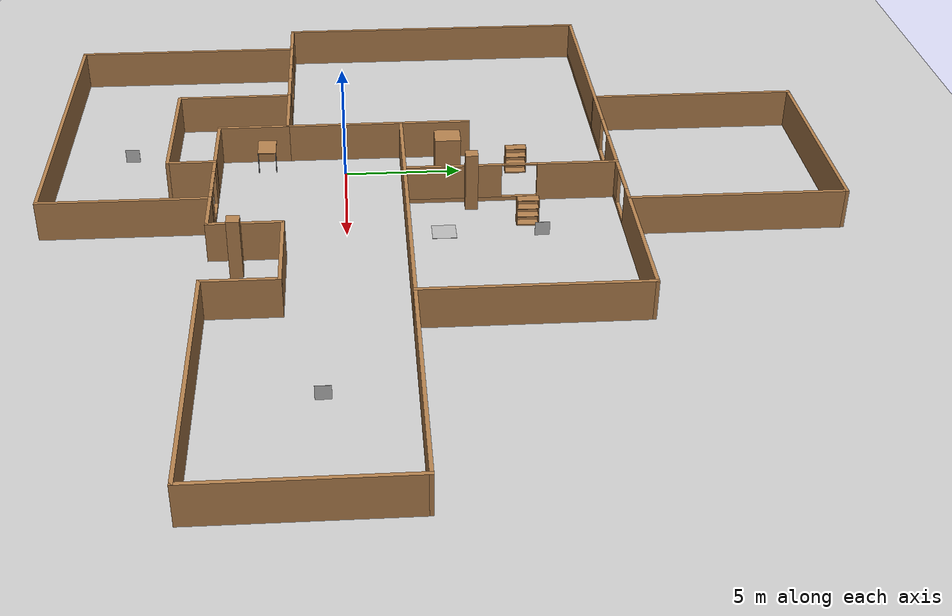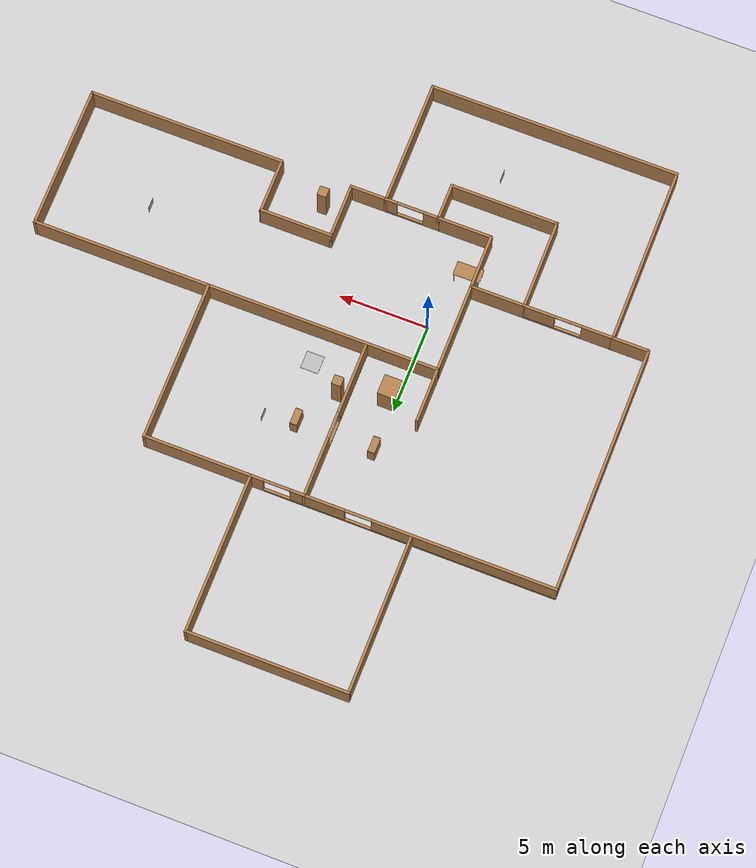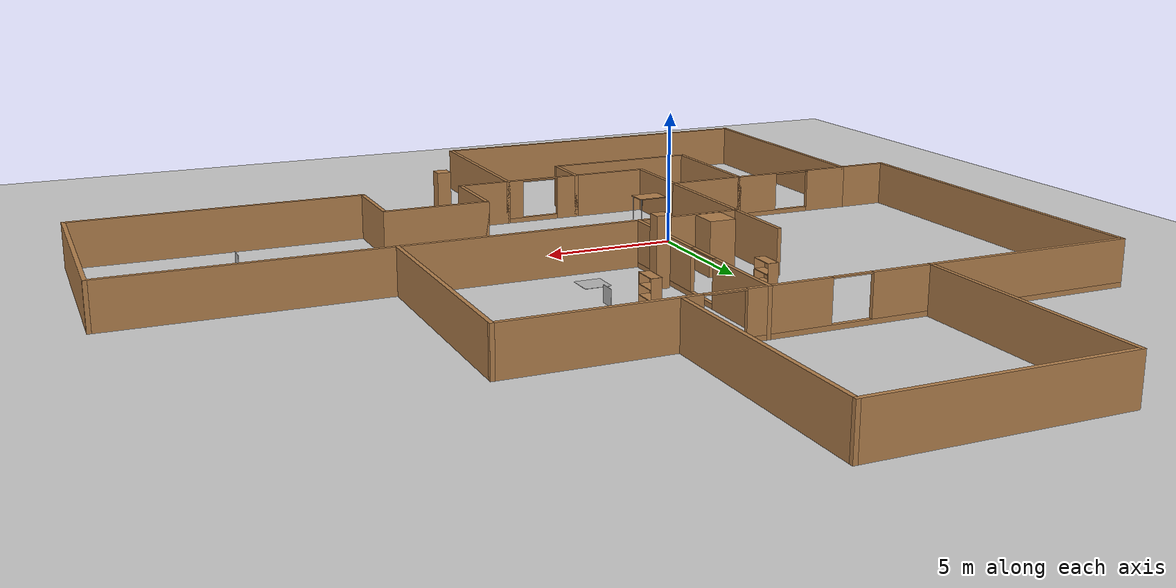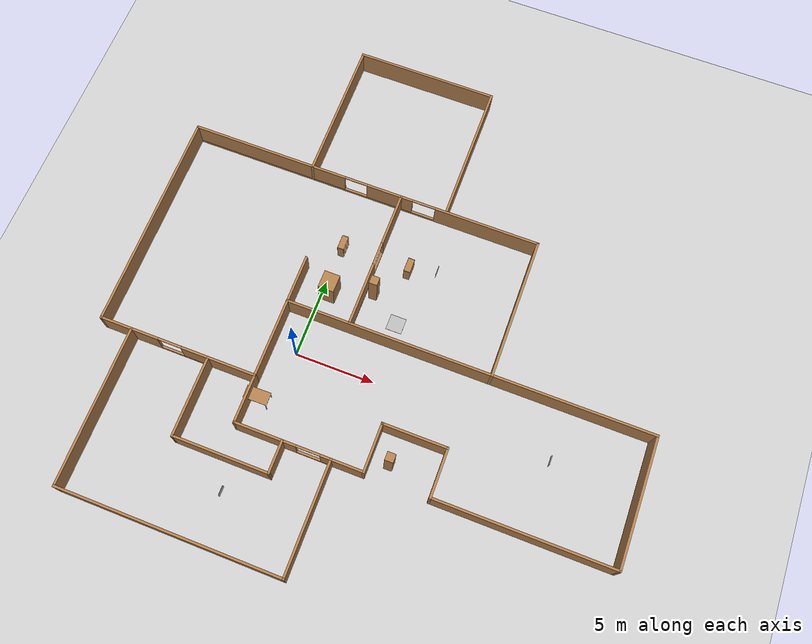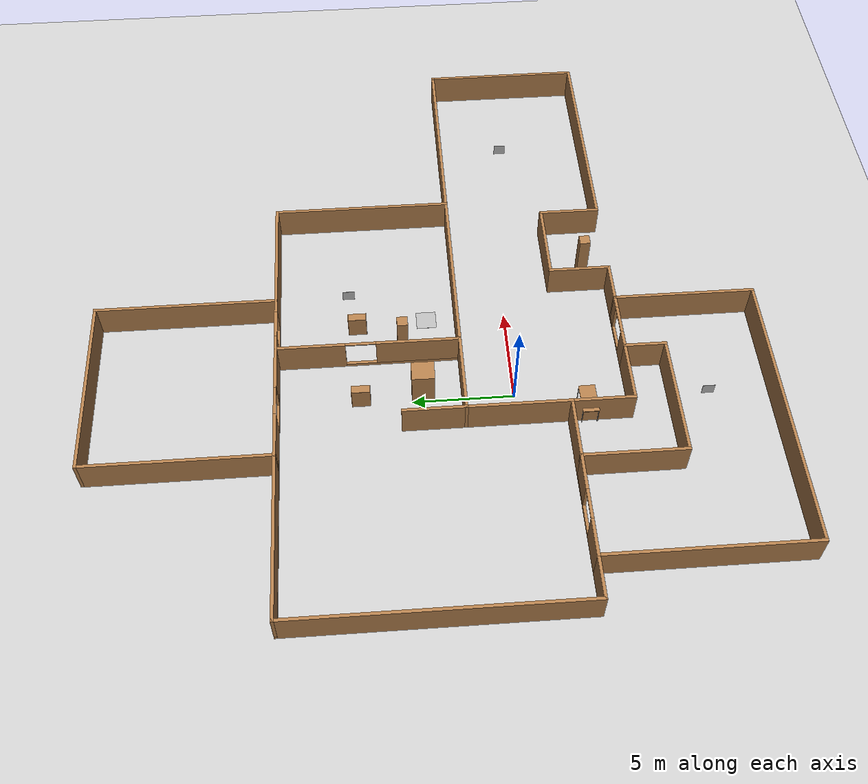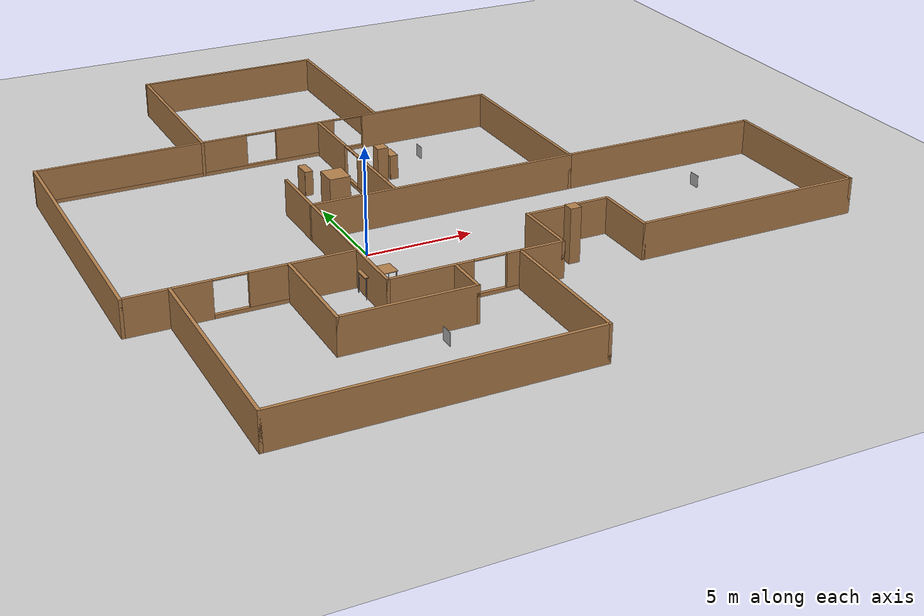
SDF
<sdf version="1.7">
 <world name="default">
  <model name="ground_plane">
   <static>1</static>
   <link name="link">
    <collision name="collision">
     <geometry><plane><normal>0 0 1</normal><size>25 25</size></plane></geometry>
     <surface><friction><ode><mu>100</mu><mu2>50</mu2></ode></friction></surface>
    </collision>
    <visual name="visual">
     <cast_shadows>0</cast_shadows>
     <geometry><plane><normal>0 0 1</normal><size>25 25</size></plane></geometry>
     <material>
      <script><uri>file://media/materials/scripts/gazebo.material</uri><name>Gazebo/Grey</name></script>
     </material>
    </visual>
   </link>
  </model>
  <model name="table">
   <static>0</static>
   <link name="link">
    <collision name="surface">
     <pose>0 0 1 0 -0 0</pose>
     <geometry><box><size>1.5 0.8 0.03</size></box></geometry>
     <surface><friction><ode><mu>0.6</mu><mu2>0.6</mu2></ode></friction></surface>
    </collision>
    <visual name="visual1">
     <pose>0 0 1 0 -0 0</pose>
     <geometry><box><size>1.5 0.8 0.03</size></box></geometry>
     <material>
      <script><uri>file://media/materials/scripts/gazebo.material</uri><name>Gazebo/Wood</name></script>
     </material>
    </visual>
    <collision name="front_left_leg">
     <pose>0.68 0.38 0.5 0 -0 0</pose>
     <geometry><cylinder><radius>0.02</radius><length>1</length></cylinder></geometry>
    </collision>
    <visual name="front_left_leg">
     <pose>0.68 0.38 0.5 0 -0 0</pose>
     <geometry><cylinder><radius>0.02</radius><length>1</length></cylinder></geometry>
     <material>
      <script><uri>file://media/materials/scripts/gazebo.material</uri><name>Gazebo/Grey</name></script>
     </material>
    </visual>
    <collision name="front_right_leg">
     <pose>0.68 -0.38 0.5 0 -0 0</pose>
     <geometry><cylinder><radius>0.02</radius><length>1</length></cylinder></geometry>
    </collision>
    <visual name="front_right_leg">
     <pose>0.68 -0.38 0.5 0 -0 0</pose>
     <geometry><cylinder><radius>0.02</radius><length>1</length></cylinder></geometry>
     <material>
      <script><uri>file://media/materials/scripts/gazebo.material</uri><name>Gazebo/Grey</name></script>
     </material>
    </visual>
    <collision name="back_right_leg">
     <pose>-0.68 -0.38 0.5 0 -0 0</pose>
     <geometry><cylinder><radius>0.02</radius><length>1</length></cylinder></geometry>
    </collision>
    <visual name="back_right_leg">
     <pose>-0.68 -0.38 0.5 0 -0 0</pose>
     <geometry><cylinder><radius>0.02</radius><length>1</length></cylinder></geometry>
     <material>
      <script><uri>file://media/materials/scripts/gazebo.material</uri><name>Gazebo/Grey</name></script>
     </material>
    </visual>
    <collision name="back_left_leg">
     <pose>-0.68 0.38 0.5 0 -0 0</pose>
     <geometry><cylinder><radius>0.02</radius><length>1</length></cylinder></geometry>
    </collision>
    <visual name="back_left_leg">
     <pose>-0.68 0.38 0.5 0 -0 0</pose>
     <geometry><cylinder><radius>0.02</radius><length>1</length></cylinder></geometry>
     <material>
      <script><uri>file://media/materials/scripts/gazebo.material</uri><name>Gazebo/Grey</name></script>
     </material>
    </visual>
    <inertial>
     <inertia><ixx>1</ixx><ixy>0</ixy><ixz>0</ixz><iyy>1</iyy><iyz>0</iyz><izz>1</izz></inertia>
     <mass>1</mass>
    </inertial>
   </link>
   <pose>-1.0198 -3.42426 -1.1e-05 1e-06 -0 0.013597</pose>
  </model>
  <model name="unit_box_0_clone_0">
   <pose>3.05307 5.27265 1.29125 -1e-06 -0 0.001589</pose>
   <link name="link">
    <inertial>
     <mass>1</mass>
     <inertia>
      <ixx>0.166667</ixx>
      <ixy>0</ixy>
      <ixz>0</ixz>
      <iyy>0.166667</iyy>
      <iyz>0</iyz>
      <izz>0.166667</izz>
     </inertia>
    </inertial>
    <collision name="collision"><geometry><box><size>0.52404 0.528614 2.5825</size></box></geometry></collision>
    <visual name="visual">
     <geometry><box><size>0.52404 0.528614 2.5825</size></box></geometry>
     <material>
      <script><uri>file://media/materials/scripts/gazebo.material</uri><name>Gazebo/Wood</name></script>
     </material>
    </visual>
   </link>
   <static>0</static>
  </model>
  <model name="unit_box_0_clone_3">
   <pose>7.64627 -4.34049 1.29125 -1e-06 -1e-06 0.001125</pose>
   <link name="link">
    <inertial>
     <mass>1</mass>
     <inertia>
      <ixx>0.166667</ixx>
      <ixy>0</ixy>
      <ixz>0</ixz>
      <iyy>0.166667</iyy>
      <iyz>0</iyz>
      <izz>0.166667</izz>
     </inertia>
    </inertial>
    <collision name="collision"><geometry><box><size>0.52404 0.528614 2.5825</size></box></geometry></collision>
    <visual name="visual">
     <geometry><box><size>0.52404 0.528614 2.5825</size></box></geometry>
     <material>
      <script><uri>file://media/materials/scripts/gazebo.material</uri><name>Gazebo/Wood</name></script>
     </material>
    </visual>
   </link>
   <static>0</static>
  </model>
  <model name="static_apriltag_0">
   <link name="link">
    <pose>0 0 0 0 1.57 0</pose>
    <inertial>
     <mass>0.39</mass>
     <inertia><ixx>0.00058</ixx><ixy>0</ixy><ixz>0</ixz><iyy>0.00058</iyy><iyz>0</iyz><izz>0.00019</izz></inertia>
    </inertial>
    <collision name="collision"><geometry><box><size>0.6 0.6 0.01</size></box></geometry></collision>
    <visual name="visual">
     <geometry><box><size>0.6 0.6 0.01</size></box></geometry>
     <material>
      <script>
       <uri>model://apriltag/materials/scripts</uri>
       <uri>model://apriltag/materials/textures</uri>
       <name>apriltag/Diffuse0</name>
      </script>
     </material>
    </visual>
    <gravity>0</gravity>
   </link>
   <pose>6.2472 7.88725 0.801689 3.1408 -0.000797 -3.14159</pose>
   <static>1</static>
   <pose>1.90787 0.108649 0 0 -0 0</pose>
  </model>
  <model name="static_apriltag_4">
   <link name="link">
    <pose>0 0 0 0 1.57 0</pose>
    <inertial>
     <mass>0.39</mass>
     <inertia><ixx>0.00058</ixx><ixy>0</ixy><ixz>0</ixz><iyy>0.00058</iyy><iyz>0</iyz><izz>0.00019</izz></inertia>
    </inertial>
    <collision name="collision"><geometry><box><size>0.6 0.6 0.01</size></box></geometry></collision>
    <visual name="visual">
     <geometry><box><size>0.6 0.6 0.01</size></box></geometry>
     <material>
      <script>
       <uri>model://apriltag/materials/scripts</uri>
       <uri>model://apriltag/materials/textures</uri>
       <name>apriltag/Diffuse4</name>
      </script>
     </material>
    </visual>
    <gravity>0</gravity>
   </link>
   <pose>16.249 -0.896929 0.8 -1.5708 -0.000796 3.14</pose>
   <static>1</static>
   <pose>3.93537 3.29316 0 0 -0 0</pose>
  </model>
  <model name="static_apriltag_5">
   <link name="link">
    <pose>0 0 0 -1.57 1.57 -0</pose>
    <inertial>
     <mass>0.39</mass>
     <inertia><ixx>0.00058</ixx><ixy>0</ixy><ixz>0</ixz><iyy>0.00058</iyy><iyz>0</iyz><izz>0.00019</izz></inertia>
    </inertial>
    <collision name="collision"><geometry><box><size>0.6 0.6 0.01</size></box></geometry></collision>
    <visual name="visual">
     <geometry><box><size>0.6 0.6 0.01</size></box></geometry>
     <material>
      <script>
       <uri>model://apriltag/materials/scripts</uri>
       <uri>model://apriltag/materials/textures</uri>
       <name>apriltag/Diffuse5</name>
      </script>
     </material>
    </visual>
    <gravity>0</gravity>
   </link>
   <pose>-0.753128 -9.28773 0.802459 3.14159 -0.001593 1.57159</pose>
   <static>1</static>
   <pose>5.04082 3.71574 0 0 -0 0</pose>
  </model>
  <model name="0810_MAP2_elment_1">
   <pose>5 4 -0.115 0 -0 0</pose>
   <link name="startflag">
    <pose>0 0 0.115 0 -0 0</pose>
    <inertial>
     <mass>0.39</mass>
     <inertia><ixx>0.00058</ixx><ixy>0</ixy><ixz>0</ixz><iyy>0.00058</iyy><iyz>0</iyz><izz>0.00019</izz></inertia>
    </inertial>
    <collision name="collision"><geometry><box><size>1 1 0.01</size></box></geometry></collision>
    <visual name="visual">
     <geometry><box><size>1 1 0.01</size></box></geometry>
     <material>
      <script>
       <uri>model://apriltag/materials/scripts</uri>
       <uri>model://apriltag/materials/textures</uri>
       <name>startflag/Diffuse</name>
      </script>
     </material>
    </visual>
   </link>
   <link name="Wall_0">
    <collision name="Wall_0_Collision">
     <geometry><box><size>13.15 0.15 1.8</size></box></geometry>
     <pose>0 0 0.9 0 -0 0</pose>
    </collision>
    <visual name="Wall_0_Visual">
     <pose>0 0 0.9 0 -0 0</pose>
     <geometry><box><size>13.15 0.15 1.8</size></box></geometry>
     <material>
      <script><uri>file://media/materials/scripts/gazebo.material</uri><name>Gazebo/Wood</name></script>
      <ambient>1 1 1 1</ambient>
     </material>
     <meta><layer>0</layer></meta>
    </visual>
    <pose>0 -1.5 0 0 -0 0</pose>
   </link>
   <link name="Wall_10">
    <collision name="Wall_10_Collision">
     <geometry><box><size>14.15 0.15 1.8</size></box></geometry>
     <pose>0 0 0.9 0 -0 0</pose>
    </collision>
    <visual name="Wall_10_Visual">
     <pose>0 0 0.9 0 -0 0</pose>
     <geometry><box><size>14.15 0.15 1.8</size></box></geometry>
     <material>
      <script><uri>file://media/materials/scripts/gazebo.material</uri><name>Gazebo/Wood</name></script>
      <ambient>1 1 1 1</ambient>
     </material>
     <meta><layer>0</layer></meta>
    </visual>
    <pose>-16.5 0.5 0 0 -0 -1.5708</pose>
   </link>
   <link name="Wall_14">
    <collision name="Wall_14_Collision">
     <geometry><box><size>5.15 0.15 1.8</size></box></geometry>
     <pose>0 0 0.9 0 -0 0</pose>
    </collision>
    <visual name="Wall_14_Visual">
     <pose>0 0 0.9 0 -0 0</pose>
     <geometry><box><size>5.15 0.15 1.8</size></box></geometry>
     <material>
      <script><uri>file://media/materials/scripts/gazebo.material</uri><name>Gazebo/Wood</name></script>
      <ambient>1 1 1 1</ambient>
     </material>
     <meta><layer>0</layer></meta>
    </visual>
    <pose>-6.5 -4 0 0 -0 -1.5708</pose>
   </link>
   <link name="Wall_16">
    <collision name="Wall_16_Collision">
     <geometry><box><size>10.15 0.15 1.8</size></box></geometry>
     <pose>0 0 0.9 0 -0 0</pose>
    </collision>
    <visual name="Wall_16_Visual">
     <pose>0 0 0.9 0 -0 0</pose>
     <geometry><box><size>10.15 0.15 1.8</size></box></geometry>
     <material>
      <script><uri>file://media/materials/scripts/gazebo.material</uri><name>Gazebo/Wood</name></script>
      <ambient>1 1 1 1</ambient>
     </material>
     <meta><layer>0</layer></meta>
    </visual>
    <pose>-14.5 -11.5 0 0 -0 -1.5708</pose>
   </link>
   <link name="Wall_18">
    <collision name="Wall_18_Collision">
     <geometry><box><size>3.15 0.15 1.8</size></box></geometry>
     <pose>0 0 0.9 0 -0 0</pose>
    </collision>
    <visual name="Wall_18_Visual">
     <pose>0 0 0.9 0 -0 0</pose>
     <geometry><box><size>3.15 0.15 1.8</size></box></geometry>
     <material>
      <script><uri>file://media/materials/scripts/gazebo.material</uri><name>Gazebo/Wood</name></script>
      <ambient>1 1 1 1</ambient>
     </material>
     <meta><layer>0</layer></meta>
    </visual>
    <pose>-6.5 -8 0 0 -0 -1.5708</pose>
   </link>
   <link name="Wall_2">
    <collision name="Wall_2_Collision">
     <geometry><box><size>9.15 0.15 1.8</size></box></geometry>
     <pose>0 0 0.9 0 -0 0</pose>
    </collision>
    <visual name="Wall_2_Visual">
     <pose>0 0 0.9 0 -0 0</pose>
     <geometry><box><size>9.15 0.15 1.8</size></box></geometry>
     <material>
      <script><uri>file://media/materials/scripts/gazebo.material</uri><name>Gazebo/Wood</name></script>
      <ambient>1 1 1 1</ambient>
     </material>
     <meta><layer>0</layer></meta>
    </visual>
    <pose>6.5 3 0 0 -0 1.5708</pose>
   </link>
   <link name="Wall_20">
    <collision name="Wall_20_Collision">
     <geometry><box><size>5.15 0.15 1.8</size></box></geometry>
     <pose>0 0 0.9 0 -0 0</pose>
    </collision>
    <visual name="Wall_20_Visual">
     <pose>0 0 0.9 0 -0 0</pose>
     <geometry><box><size>5.15 0.15 1.8</size></box></geometry>
     <material>
      <script><uri>file://media/materials/scripts/gazebo.material</uri><name>Gazebo/Wood</name></script>
      <ambient>1 1 1 1</ambient>
     </material>
     <meta><layer>0</layer></meta>
    </visual>
    <pose>-9.5 -9 0 0 -0 -1.5708</pose>
   </link>
   <link name="Wall_22">
    <collision name="Wall_22_Collision">
     <geometry><box><size>2.15 0.15 1.8</size></box></geometry>
     <pose>0 0 0.9 0 -0 0</pose>
    </collision>
    <visual name="Wall_22_Visual">
     <pose>0 0 0.9 0 -0 0</pose>
     <geometry><box><size>2.15 0.15 1.8</size></box></geometry>
     <material>
      <script><uri>file://media/materials/scripts/gazebo.material</uri><name>Gazebo/Wood</name></script>
      <ambient>1 1 1 1</ambient>
     </material>
     <meta><layer>0</layer></meta>
    </visual>
    <pose>-15.5 -6.5 0 0 -0 0</pose>
   </link>
   <link name="Wall_24">
    <collision name="Wall_24_Collision">
     <geometry><box><size>3.15 0.15 1.8</size></box></geometry>
     <pose>0 0 0.9 0 -0 0</pose>
    </collision>
    <visual name="Wall_24_Visual">
     <pose>0 0 0.9 0 -0 0</pose>
     <geometry><box><size>3.15 0.15 1.8</size></box></geometry>
     <material>
      <script><uri>file://media/materials/scripts/gazebo.material</uri><name>Gazebo/Wood</name></script>
      <ambient>1 1 1 1</ambient>
     </material>
     <meta><layer>0</layer></meta>
    </visual>
    <pose>-8 -6.5 0 0 -0 0</pose>
   </link>
   <link name="Wall_26">
    <collision name="Wall_26_Collision">
     <geometry><box><size>14.15 0.15 1.8</size></box></geometry>
     <pose>0 0 0.9 0 -0 0</pose>
    </collision>
    <visual name="Wall_26_Visual">
     <pose>0 0 0.9 0 -0 0</pose>
     <geometry><box><size>14.15 0.15 1.8</size></box></geometry>
     <material>
      <script><uri>file://media/materials/scripts/gazebo.material</uri><name>Gazebo/Wood</name></script>
      <ambient>1 1 1 1</ambient>
     </material>
     <meta><layer>0</layer></meta>
    </visual>
    <pose>-7.5 -16.5 0 0 -0 0</pose>
   </link>
   <link name="Wall_28">
    <collision name="Wall_28_Collision">
     <geometry><box><size>6.15 0.15 1.8</size></box></geometry>
     <pose>0 0 0.9 0 -0 0</pose>
    </collision>
    <visual name="Wall_28_Visual">
     <pose>0 0 0.9 0 -0 0</pose>
     <geometry><box><size>6.15 0.15 1.8</size></box></geometry>
     <material>
      <script><uri>file://media/materials/scripts/gazebo.material</uri><name>Gazebo/Wood</name></script>
      <ambient>1 1 1 1</ambient>
     </material>
     <meta><layer>0</layer></meta>
    </visual>
    <pose>-6.5 -11.5 0 0 -0 0</pose>
   </link>
   <link name="Wall_30">
    <collision name="Wall_30_Collision">
     <geometry><box><size>2.15 0.15 1.8</size></box></geometry>
     <pose>0 0 0.9 0 -0 0</pose>
    </collision>
    <visual name="Wall_30_Visual">
     <pose>0 0 0.9 0 -0 0</pose>
     <geometry><box><size>2.15 0.15 1.8</size></box></geometry>
     <material>
      <script><uri>file://media/materials/scripts/gazebo.material</uri><name>Gazebo/Wood</name></script>
      <ambient>1 1 1 1</ambient>
     </material>
     <meta><layer>0</layer></meta>
    </visual>
    <pose>-3.5 -10.5 0 0 -0 -1.5708</pose>
   </link>
   <link name="Wall_32">
    <collision name="Wall_32_Collision">
     <geometry><box><size>7.15 0.15 1.8</size></box></geometry>
     <pose>0 0 0.9 0 -0 0</pose>
    </collision>
    <visual name="Wall_32_Visual">
     <pose>0 0 0.9 0 -0 0</pose>
     <geometry><box><size>7.15 0.15 1.8</size></box></geometry>
     <material>
      <script><uri>file://media/materials/scripts/gazebo.material</uri><name>Gazebo/Wood</name></script>
      <ambient>1 1 1 1</ambient>
     </material>
     <meta><layer>0</layer></meta>
    </visual>
    <pose>-0.5 -13 0 0 -0 1.5708</pose>
   </link>
   <link name="Wall_36">
    <collision name="Wall_36_Collision">
     <geometry><box><size>3.15 0.15 1.8</size></box></geometry>
     <pose>0 0 0.9 0 -0 0</pose>
    </collision>
    <visual name="Wall_36_Visual">
     <pose>0 0 0.9 0 -0 0</pose>
     <geometry><box><size>3.15 0.15 1.8</size></box></geometry>
     <material>
      <script><uri>file://media/materials/scripts/gazebo.material</uri><name>Gazebo/Wood</name></script>
      <ambient>1 1 1 1</ambient>
     </material>
     <meta><layer>0</layer></meta>
    </visual>
    <pose>-5 -9.5 0 0 -0 0</pose>
   </link>
   <link name="Wall_37">
    <pose>-2 -9.5 0 0 -0 0</pose>
    <visual name="Wall_37_Visual_0">
     <pose>-1.11242 0 0.9 0 -0 0</pose>
     <geometry><box><size>0.925162 0.15 1.8</size></box></geometry>
     <material>
      <script><uri>file://media/materials/scripts/gazebo.material</uri><name>Gazebo/Wood</name></script>
      <ambient>1 1 1 1</ambient>
     </material>
     <meta><layer>0</layer></meta>
    </visual>
    <collision name="Wall_37_Collision_0">
     <geometry><box><size>0.925162 0.15 1.8</size></box></geometry>
     <pose>-1.11242 0 0.9 0 -0 0</pose>
    </collision>
    <visual name="Wall_37_Visual_1">
     <pose>0.462581 0 0.125 0 -0 0</pose>
     <geometry><box><size>2.22484 0.15 0.25</size></box></geometry>
     <material>
      <script><uri>file://media/materials/scripts/gazebo.material</uri><name>Gazebo/Wood</name></script>
      <ambient>1 1 1 1</ambient>
     </material>
     <meta><layer>0</layer></meta>
    </visual>
    <collision name="Wall_37_Collision_1">
     <geometry><box><size>2.22484 0.15 0.25</size></box></geometry>
     <pose>0.462581 0 0.125 0 -0 0</pose>
    </collision>
    <visual name="Wall_37_Visual_2">
     <pose>1.21258 0 1.025 0 -0 0</pose>
     <geometry><box><size>0.724838 0.15 1.55</size></box></geometry>
     <material>
      <script><uri>file://media/materials/scripts/gazebo.material</uri><name>Gazebo/Wood</name></script>
      <ambient>1 1 1 1</ambient>
     </material>
     <meta><layer>0</layer></meta>
    </visual>
    <collision name="Wall_37_Collision_2">
     <geometry><box><size>0.724838 0.15 1.55</size></box></geometry>
     <pose>1.21258 0 1.025 0 -0 0</pose>
    </collision>
    <visual name="Wall_37_Visual_3">
     <pose>0.100162 0 1.775 0 -0 0</pose>
     <geometry><box><size>1.5 0.15 0.05</size></box></geometry>
     <material>
      <script><uri>file://media/materials/scripts/gazebo.material</uri><name>Gazebo/Wood</name></script>
      <ambient>1 1 1 1</ambient>
     </material>
     <meta><layer>0</layer></meta>
    </visual>
    <collision name="Wall_37_Collision_3">
     <geometry><box><size>1.5 0.15 0.05</size></box></geometry>
     <pose>0.100162 0 1.775 0 -0 0</pose>
    </collision>
   </link>
   <link name="Wall_39">
    <pose>-12 -6.5 0 0 -0 0</pose>
    <visual name="Wall_39_Visual_0">
     <pose>-1.66475 0 0.9 0 -0 0</pose>
     <geometry><box><size>1.82051 0.15 1.8</size></box></geometry>
     <material>
      <script><uri>file://media/materials/scripts/gazebo.material</uri><name>Gazebo/Wood</name></script>
      <ambient>1 1 1 1</ambient>
     </material>
     <meta><layer>0</layer></meta>
    </visual>
    <collision name="Wall_39_Collision_0">
     <geometry><box><size>1.82051 0.15 1.8</size></box></geometry>
     <pose>-1.66475 0 0.9 0 -0 0</pose>
    </collision>
    <visual name="Wall_39_Visual_1">
     <pose>0.910253 0 0.125 0 -0 0</pose>
     <geometry><box><size>3.3295 0.15 0.25</size></box></geometry>
     <material>
      <script><uri>file://media/materials/scripts/gazebo.material</uri><name>Gazebo/Wood</name></script>
      <ambient>1 1 1 1</ambient>
     </material>
     <meta><layer>0</layer></meta>
    </visual>
    <collision name="Wall_39_Collision_1">
     <geometry><box><size>3.3295 0.15 0.25</size></box></geometry>
     <pose>0.910253 0 0.125 0 -0 0</pose>
    </collision>
    <visual name="Wall_39_Visual_2">
     <pose>1.66025 0 1.025 0 -0 0</pose>
     <geometry><box><size>1.8295 0.15 1.55</size></box></geometry>
     <material>
      <script><uri>file://media/materials/scripts/gazebo.material</uri><name>Gazebo/Wood</name></script>
      <ambient>1 1 1 1</ambient>
     </material>
     <meta><layer>0</layer></meta>
    </visual>
    <collision name="Wall_39_Collision_2">
     <geometry><box><size>1.8295 0.15 1.55</size></box></geometry>
     <pose>1.66025 0 1.025 0 -0 0</pose>
    </collision>
    <visual name="Wall_39_Visual_3">
     <pose>-0.004495 0 1.775 0 -0 0</pose>
     <geometry><box><size>1.5 0.15 0.05</size></box></geometry>
     <material>
      <script><uri>file://media/materials/scripts/gazebo.material</uri><name>Gazebo/Wood</name></script>
      <ambient>1 1 1 1</ambient>
     </material>
     <meta><layer>0</layer></meta>
    </visual>
    <collision name="Wall_39_Collision_3">
     <geometry><box><size>1.5 0.15 0.05</size></box></geometry>
     <pose>-0.004495 0 1.775 0 -0 0</pose>
    </collision>
   </link>
   <link name="Wall_4">
    <pose>-5 7.5 0 0 -0 3.14159</pose>
    <visual name="Wall_4_Visual_0">
     <pose>-8.17816 0 0.9 0 -0 0</pose>
     <geometry><box><size>6.79369 0.15 1.8</size></box></geometry>
     <material>
      <script><uri>file://media/materials/scripts/gazebo.material</uri><name>Gazebo/Wood</name></script>
      <ambient>1 1 1 1</ambient>
     </material>
     <meta><layer>0</layer></meta>
    </visual>
    <collision name="Wall_4_Collision_0">
     <geometry><box><size>6.79369 0.15 1.8</size></box></geometry>
     <pose>-8.17816 0 0.9 0 -0 0</pose>
    </collision>
    <visual name="Wall_4_Visual_1">
     <pose>3.39684 0 0.125 0 -0 0</pose>
     <geometry><box><size>16.3563 0.15 0.25</size></box></geometry>
     <material>
      <script><uri>file://media/materials/scripts/gazebo.material</uri><name>Gazebo/Wood</name></script>
      <ambient>1 1 1 1</ambient>
     </material>
     <meta><layer>0</layer></meta>
    </visual>
    <collision name="Wall_4_Collision_1">
     <geometry><box><size>16.3563 0.15 0.25</size></box></geometry>
     <pose>3.39684 0 0.125 0 -0 0</pose>
    </collision>
    <visual name="Wall_4_Visual_2">
     <pose>-1.75236 0 1.025 0 -0 0</pose>
     <geometry><box><size>3.0579 0.15 1.55</size></box></geometry>
     <material>
      <script><uri>file://media/materials/scripts/gazebo.material</uri><name>Gazebo/Wood</name></script>
      <ambient>1 1 1 1</ambient>
     </material>
     <meta><layer>0</layer></meta>
    </visual>
    <collision name="Wall_4_Collision_2">
     <geometry><box><size>3.0579 0.15 1.55</size></box></geometry>
     <pose>-1.75236 0 1.025 0 -0 0</pose>
    </collision>
    <visual name="Wall_4_Visual_3">
     <pose>6.4258 0 1.025 0 -0 0</pose>
     <geometry><box><size>10.2984 0.15 1.55</size></box></geometry>
     <material>
      <script><uri>file://media/materials/scripts/gazebo.material</uri><name>Gazebo/Wood</name></script>
      <ambient>1 1 1 1</ambient>
     </material>
     <meta><layer>0</layer></meta>
    </visual>
    <collision name="Wall_4_Collision_3">
     <geometry><box><size>10.2984 0.15 1.55</size></box></geometry>
     <pose>6.4258 0 1.025 0 -0 0</pose>
    </collision>
    <visual name="Wall_4_Visual_4">
     <pose>-4.03131 0 1.775 0 -0 0</pose>
     <geometry><box><size>1.5 0.15 0.05</size></box></geometry>
     <material>
      <script><uri>file://media/materials/scripts/gazebo.material</uri><name>Gazebo/Wood</name></script>
      <ambient>1 1 1 1</ambient>
     </material>
     <meta><layer>0</layer></meta>
    </visual>
    <collision name="Wall_4_Collision_4">
     <geometry><box><size>1.5 0.15 0.05</size></box></geometry>
     <pose>-4.03131 0 1.775 0 -0 0</pose>
    </collision>
    <visual name="Wall_4_Visual_5">
     <pose>0.526593 0 1.775 0 -0 0</pose>
     <geometry><box><size>1.5 0.15 0.05</size></box></geometry>
     <material>
      <script><uri>file://media/materials/scripts/gazebo.material</uri><name>Gazebo/Wood</name></script>
      <ambient>1 1 1 1</ambient>
     </material>
     <meta><layer>0</layer></meta>
    </visual>
    <collision name="Wall_4_Collision_5">
     <geometry><box><size>1.5 0.15 0.05</size></box></geometry>
     <pose>0.526593 0 1.775 0 -0 0</pose>
    </collision>
   </link>
   <link name="Wall_41">
    <collision name="Wall_41_Collision">
     <geometry><box><size>3.15 0.15 1.8</size></box></geometry>
     <pose>0 0 0.9 0 -0 0</pose>
    </collision>
    <visual name="Wall_41_Visual">
     <pose>0 0 0.9 0 -0 0</pose>
     <geometry><box><size>3.15 0.15 1.8</size></box></geometry>
     <material>
      <script><uri>file://media/materials/scripts/gazebo.material</uri><name>Gazebo/Wood</name></script>
      <ambient>1 1 1 1</ambient>
     </material>
     <meta><layer>0</layer></meta>
    </visual>
    <pose>-6.5 0 0 0 -0 1.5708</pose>
   </link>
   <link name="Wall_43">
    <collision name="Wall_43_Collision">
     <geometry><box><size>2.15 0.15 1.8</size></box></geometry>
     <pose>0 0 0.9 0 -0 0</pose>
    </collision>
    <visual name="Wall_43_Visual">
     <pose>0 0 0.9 0 -0 0</pose>
     <geometry><box><size>2.15 0.15 1.8</size></box></geometry>
     <material>
      <script><uri>file://media/materials/scripts/gazebo.material</uri><name>Gazebo/Wood</name></script>
      <ambient>1 1 1 1</ambient>
     </material>
     <meta><layer>0</layer></meta>
    </visual>
    <pose>0.5 -9.5 0 0 -0 0</pose>
   </link>
   <link name="Wall_44">
    <collision name="Wall_44_Collision">
     <geometry><box><size>3.15 0.15 1.8</size></box></geometry>
     <pose>0 0 0.9 0 -0 0</pose>
    </collision>
    <visual name="Wall_44_Visual">
     <pose>0 0 0.9 0 -0 0</pose>
     <geometry><box><size>3.15 0.15 1.8</size></box></geometry>
     <material>
      <script><uri>file://media/materials/scripts/gazebo.material</uri><name>Gazebo/Wood</name></script>
      <ambient>1 1 1 1</ambient>
     </material>
     <meta><layer>0</layer></meta>
    </visual>
    <pose>1.5 -8 0 0 -0 1.5708</pose>
   </link>
   <link name="Wall_45">
    <collision name="Wall_45_Collision">
     <geometry><box><size>4.15 0.15 1.8</size></box></geometry>
     <pose>0 0 0.9 0 -0 0</pose>
    </collision>
    <visual name="Wall_45_Visual">
     <pose>0 0 0.9 0 -0 0</pose>
     <geometry><box><size>4.15 0.15 1.8</size></box></geometry>
     <material>
      <script><uri>file://media/materials/scripts/gazebo.material</uri><name>Gazebo/Wood</name></script>
      <ambient>1 1 1 1</ambient>
     </material>
     <meta><layer>0</layer></meta>
    </visual>
    <pose>3.5 -6.5 0 0 -0 0</pose>
   </link>
   <link name="Wall_46">
    <collision name="Wall_46_Collision">
     <geometry><box><size>3.15 0.15 1.8</size></box></geometry>
     <pose>0 0 0.9 0 -0 0</pose>
    </collision>
    <visual name="Wall_46_Visual">
     <pose>0 0 0.9 0 -0 0</pose>
     <geometry><box><size>3.15 0.15 1.8</size></box></geometry>
     <material>
      <script><uri>file://media/materials/scripts/gazebo.material</uri><name>Gazebo/Wood</name></script>
      <ambient>1 1 1 1</ambient>
     </material>
     <meta><layer>0</layer></meta>
    </visual>
    <pose>5.5 -8 0 0 -0 -1.5708</pose>
   </link>
   <link name="Wall_47">
    <collision name="Wall_47_Collision">
     <geometry><box><size>11.15 0.15 1.8</size></box></geometry>
     <pose>0 0 0.9 0 -0 0</pose>
    </collision>
    <visual name="Wall_47_Visual">
     <pose>0 0 0.9 0 -0 0</pose>
     <geometry><box><size>11.15 0.15 1.8</size></box></geometry>
     <material>
      <script><uri>file://media/materials/scripts/gazebo.material</uri><name>Gazebo/Wood</name></script>
      <ambient>1 1 1 1</ambient>
     </material>
     <meta><layer>0</layer></meta>
    </visual>
    <pose>11 -9.5 0 0 -0 0</pose>
   </link>
   <link name="Wall_48">
    <collision name="Wall_48_Collision">
     <geometry><box><size>8.15 0.15 1.8</size></box></geometry>
     <pose>0 0 0.9 0 -0 0</pose>
    </collision>
    <visual name="Wall_48_Visual">
     <pose>0 0 0.9 0 -0 0</pose>
     <geometry><box><size>8.15 0.15 1.8</size></box></geometry>
     <material>
      <script><uri>file://media/materials/scripts/gazebo.material</uri><name>Gazebo/Wood</name></script>
      <ambient>1 1 1 1</ambient>
     </material>
     <meta><layer>0</layer></meta>
    </visual>
    <pose>16.5 -5.5 0 0 -0 1.5708</pose>
   </link>
   <link name="Wall_49">
    <collision name="Wall_49_Collision">
     <geometry><box><size>10.15 0.15 1.8</size></box></geometry>
     <pose>0 0 0.9 0 -0 0</pose>
    </collision>
    <visual name="Wall_49_Visual">
     <pose>0 0 0.9 0 -0 0</pose>
     <geometry><box><size>10.15 0.15 1.8</size></box></geometry>
     <material>
      <script><uri>file://media/materials/scripts/gazebo.material</uri><name>Gazebo/Wood</name></script>
      <ambient>1 1 1 1</ambient>
     </material>
     <meta><layer>0</layer></meta>
    </visual>
    <pose>11.5 -1.5 0 0 -0 3.14159</pose>
   </link>
   <link name="Wall_54">
    <collision name="Wall_54_Collision">
     <geometry><box><size>9.15 0.15 1.8</size></box></geometry>
     <pose>0 0 0.9 0 -0 0</pose>
    </collision>
    <visual name="Wall_54_Visual">
     <pose>0 0 0.9 0 -0 0</pose>
     <geometry><box><size>9.15 0.15 1.8</size></box></geometry>
     <material>
      <script><uri>file://media/materials/scripts/gazebo.material</uri><name>Gazebo/Wood</name></script>
      <ambient>1 1 1 1</ambient>
     </material>
     <meta><layer>0</layer></meta>
    </visual>
    <pose>-4 16.5 0 0 -0 3.14159</pose>
   </link>
   <link name="Wall_57">
    <collision name="Wall_57_Collision">
     <geometry><box><size>9.15 0.15 1.8</size></box></geometry>
     <pose>0 0 0.9 0 -0 0</pose>
    </collision>
    <visual name="Wall_57_Visual">
     <pose>0 0 0.9 0 -0 0</pose>
     <geometry><box><size>9.15 0.15 1.8</size></box></geometry>
     <material>
      <script><uri>file://media/materials/scripts/gazebo.material</uri><name>Gazebo/Wood</name></script>
      <ambient>1 1 1 1</ambient>
     </material>
     <meta><layer>0</layer></meta>
    </visual>
    <pose>-8.5 12 0 0 -0 -1.5708</pose>
   </link>
   <link name="Wall_6">
    <pose>-2.5 3 0 0 -0 -1.5708</pose>
    <visual name="Wall_6_Visual_0">
     <pose>-2.84145 0 0.9 0 -0 0</pose>
     <geometry><box><size>3.46711 0.15 1.8</size></box></geometry>
     <material>
      <script><uri>file://media/materials/scripts/gazebo.material</uri><name>Gazebo/Wood</name></script>
      <ambient>1 1 1 1</ambient>
     </material>
     <meta><layer>0</layer></meta>
    </visual>
    <collision name="Wall_6_Collision_0">
     <geometry><box><size>3.46711 0.15 1.8</size></box></geometry>
     <pose>-2.84145 0 0.9 0 -0 0</pose>
    </collision>
    <visual name="Wall_6_Visual_1">
     <pose>1.73355 0 0.125 0 -0 0</pose>
     <geometry><box><size>5.68289 0.15 0.25</size></box></geometry>
     <material>
      <script><uri>file://media/materials/scripts/gazebo.material</uri><name>Gazebo/Wood</name></script>
      <ambient>1 1 1 1</ambient>
     </material>
     <meta><layer>0</layer></meta>
    </visual>
    <collision name="Wall_6_Collision_1">
     <geometry><box><size>5.68289 0.15 0.25</size></box></geometry>
     <pose>1.73355 0 0.125 0 -0 0</pose>
    </collision>
    <visual name="Wall_6_Visual_2">
     <pose>2.48355 0 1.025 0 -0 0</pose>
     <geometry><box><size>4.18289 0.15 1.55</size></box></geometry>
     <material>
      <script><uri>file://media/materials/scripts/gazebo.material</uri><name>Gazebo/Wood</name></script>
      <ambient>1 1 1 1</ambient>
     </material>
     <meta><layer>0</layer></meta>
    </visual>
    <collision name="Wall_6_Collision_2">
     <geometry><box><size>4.18289 0.15 1.55</size></box></geometry>
     <pose>2.48355 0 1.025 0 -0 0</pose>
    </collision>
    <visual name="Wall_6_Visual_3">
     <pose>-0.357894 0 1.775 0 -0 0</pose>
     <geometry><box><size>1.5 0.15 0.05</size></box></geometry>
     <material>
      <script><uri>file://media/materials/scripts/gazebo.material</uri><name>Gazebo/Wood</name></script>
      <ambient>1 1 1 1</ambient>
     </material>
     <meta><layer>0</layer></meta>
    </visual>
    <collision name="Wall_6_Collision_3">
     <geometry><box><size>1.5 0.15 0.05</size></box></geometry>
     <pose>-0.357894 0 1.775 0 -0 0</pose>
    </collision>
   </link>
   <link name="Wall_8">
    <collision name="Wall_8_Collision">
     <geometry><box><size>9.15 0.15 1.8</size></box></geometry>
     <pose>0 0 0.9 0 -0 0</pose>
    </collision>
    <visual name="Wall_8_Visual">
     <pose>0 0 0.9 0 -0 0</pose>
     <geometry><box><size>9.15 0.15 1.8</size></box></geometry>
     <material>
      <script><uri>file://media/materials/scripts/gazebo.material</uri><name>Gazebo/Wood</name></script>
      <ambient>1 1 1 1</ambient>
     </material>
     <meta><layer>0</layer></meta>
    </visual>
    <pose>0.5 12 0 0 -0 1.5708</pose>
   </link>
   <static>1</static>
  </model>
  <model name="unit_box_clone_0">
   <pose>0.44333 4.43835 1.01795 1e-06 -1e-06 -0.009742</pose>
   <link name="link">
    <inertial>
     <mass>1</mass>
     <inertia>
      <ixx>0.166667</ixx>
      <ixy>0</ixy>
      <ixz>0</ixz>
      <iyy>0.166667</iyy>
      <iyz>0</iyz>
      <izz>0.166667</izz>
     </inertia>
    </inertial>
    <collision name="collision"><geometry><box><size>1 1.11313 2.03591</size></box></geometry></collision>
    <visual name="visual">
     <geometry><box><size>1 1.11313 2.03591</size></box></geometry>
     <material>
      <script><uri>file://media/materials/scripts/gazebo.material</uri><name>Gazebo/Wood</name></script>
     </material>
    </visual>
   </link>
   <static>0</static>
  </model>
  <model name="bookshelf_clone_0_clone_clone_clone_clone_0">
   <static>1</static>
   <link name="link">
    <inertial><mass>1</mass></inertial>
    <collision name="back">
     <pose>0 0.005 0.6 0 -0 0</pose>
     <geometry><box><size>0.9 0.01 1.2</size></box></geometry>
    </collision>
    <visual name="visual1">
     <pose>0 0.005 0.6 0 -0 0</pose>
     <geometry><box><size>0.9 0.01 1.2</size></box></geometry>
     <material>
      <script><uri>file://media/materials/scripts/gazebo.material</uri><name>Gazebo/Wood</name></script>
     </material>
    </visual>
    <collision name="left_side">
     <pose>0.45 -0.195 0.6 0 -0 0</pose>
     <geometry><box><size>0.02 0.4 1.2</size></box></geometry>
    </collision>
    <visual name="visual2">
     <pose>0.45 -0.195 0.6 0 -0 0</pose>
     <geometry><box><size>0.02 0.4 1.2</size></box></geometry>
     <material>
      <script><uri>file://media/materials/scripts/gazebo.material</uri><name>Gazebo/Wood</name></script>
     </material>
    </visual>
    <collision name="right_side">
     <pose>-0.45 -0.195 0.6 0 -0 0</pose>
     <geometry><box><size>0.02 0.4 1.2</size></box></geometry>
    </collision>
    <visual name="visual3">
     <pose>-0.45 -0.195 0.6 0 -0 0</pose>
     <geometry><box><size>0.02 0.4 1.2</size></box></geometry>
     <material>
      <script><uri>file://media/materials/scripts/gazebo.material</uri><name>Gazebo/Wood</name></script>
     </material>
    </visual>
    <collision name="bottom">
     <pose>0 -0.195 0.03 0 -0 0</pose>
     <geometry><box><size>0.88 0.4 0.06</size></box></geometry>
    </collision>
    <visual name="visual4">
     <pose>0 -0.195 0.03 0 -0 0</pose>
     <geometry><box><size>0.88 0.4 0.06</size></box></geometry>
     <material>
      <script><uri>file://media/materials/scripts/gazebo.material</uri><name>Gazebo/Wood</name></script>
     </material>
    </visual>
    <collision name="top">
     <pose>0 -0.195 1.19 0 -0 0</pose>
     <geometry><box><size>0.88 0.4 0.02</size></box></geometry>
    </collision>
    <visual name="visual5">
     <pose>0 -0.195 1.19 0 -0 0</pose>
     <geometry><box><size>0.88 0.4 0.02</size></box></geometry>
     <material>
      <script><uri>file://media/materials/scripts/gazebo.material</uri><name>Gazebo/Wood</name></script>
     </material>
    </visual>
    <collision name="low_shelf">
     <pose>0 -0.195 0.43 0 -0 0</pose>
     <geometry><box><size>0.88 0.4 0.02</size></box></geometry>
    </collision>
    <visual name="visual6">
     <pose>0 -0.195 0.43 0 -0 0</pose>
     <geometry><box><size>0.88 0.4 0.02</size></box></geometry>
     <material>
      <script><uri>file://media/materials/scripts/gazebo.material</uri><name>Gazebo/Wood</name></script>
     </material>
    </visual>
    <collision name="high_shelf">
     <pose>0 -0.195 0.8 0 -0 0</pose>
     <geometry><box><size>0.88 0.4 0.02</size></box></geometry>
    </collision>
    <visual name="visual7">
     <pose>0 -0.195 0.8 0 -0 0</pose>
     <geometry><box><size>0.88 0.4 0.02</size></box></geometry>
     <material>
      <script><uri>file://media/materials/scripts/gazebo.material</uri><name>Gazebo/Wood</name></script>
     </material>
    </visual>
   </link>
   <pose>-0.040988 7.46061 0 0 -0 1.57</pose>
  </model>
  <model name="bookshelf_clone_0_clone_clone_clone_clone_1">
   <static>1</static>
   <link name="link">
    <inertial><mass>1</mass></inertial>
    <collision name="back">
     <pose>0 0.005 0.6 0 -0 0</pose>
     <geometry><box><size>0.9 0.01 1.2</size></box></geometry>
    </collision>
    <visual name="visual1">
     <pose>0 0.005 0.6 0 -0 0</pose>
     <geometry><box><size>0.9 0.01 1.2</size></box></geometry>
     <material>
      <script><uri>file://media/materials/scripts/gazebo.material</uri><name>Gazebo/Wood</name></script>
     </material>
    </visual>
    <collision name="left_side">
     <pose>0.45 -0.195 0.6 0 -0 0</pose>
     <geometry><box><size>0.02 0.4 1.2</size></box></geometry>
    </collision>
    <visual name="visual2">
     <pose>0.45 -0.195 0.6 0 -0 0</pose>
     <geometry><box><size>0.02 0.4 1.2</size></box></geometry>
     <material>
      <script><uri>file://media/materials/scripts/gazebo.material</uri><name>Gazebo/Wood</name></script>
     </material>
    </visual>
    <collision name="right_side">
     <pose>-0.45 -0.195 0.6 0 -0 0</pose>
     <geometry><box><size>0.02 0.4 1.2</size></box></geometry>
    </collision>
    <visual name="visual3">
     <pose>-0.45 -0.195 0.6 0 -0 0</pose>
     <geometry><box><size>0.02 0.4 1.2</size></box></geometry>
     <material>
      <script><uri>file://media/materials/scripts/gazebo.material</uri><name>Gazebo/Wood</name></script>
     </material>
    </visual>
    <collision name="bottom">
     <pose>0 -0.195 0.03 0 -0 0</pose>
     <geometry><box><size>0.88 0.4 0.06</size></box></geometry>
    </collision>
    <visual name="visual4">
     <pose>0 -0.195 0.03 0 -0 0</pose>
     <geometry><box><size>0.88 0.4 0.06</size></box></geometry>
     <material>
      <script><uri>file://media/materials/scripts/gazebo.material</uri><name>Gazebo/Wood</name></script>
     </material>
    </visual>
    <collision name="top">
     <pose>0 -0.195 1.19 0 -0 0</pose>
     <geometry><box><size>0.88 0.4 0.02</size></box></geometry>
    </collision>
    <visual name="visual5">
     <pose>0 -0.195 1.19 0 -0 0</pose>
     <geometry><box><size>0.88 0.4 0.02</size></box></geometry>
     <material>
      <script><uri>file://media/materials/scripts/gazebo.material</uri><name>Gazebo/Wood</name></script>
     </material>
    </visual>
    <collision name="low_shelf">
     <pose>0 -0.195 0.43 0 -0 0</pose>
     <geometry><box><size>0.88 0.4 0.02</size></box></geometry>
    </collision>
    <visual name="visual6">
     <pose>0 -0.195 0.43 0 -0 0</pose>
     <geometry><box><size>0.88 0.4 0.02</size></box></geometry>
     <material>
      <script><uri>file://media/materials/scripts/gazebo.material</uri><name>Gazebo/Wood</name></script>
     </material>
    </visual>
    <collision name="high_shelf">
     <pose>0 -0.195 0.8 0 -0 0</pose>
     <geometry><box><size>0.88 0.4 0.02</size></box></geometry>
    </collision>
    <visual name="visual7">
     <pose>0 -0.195 0.8 0 -0 0</pose>
     <geometry><box><size>0.88 0.4 0.02</size></box></geometry>
     <material>
      <script><uri>file://media/materials/scripts/gazebo.material</uri><name>Gazebo/Wood</name></script>
     </material>
    </visual>
   </link>
   <pose>4.33114 7.49745 0 0 -0 1.57</pose>
  </model>
 </world>
</sdf>
